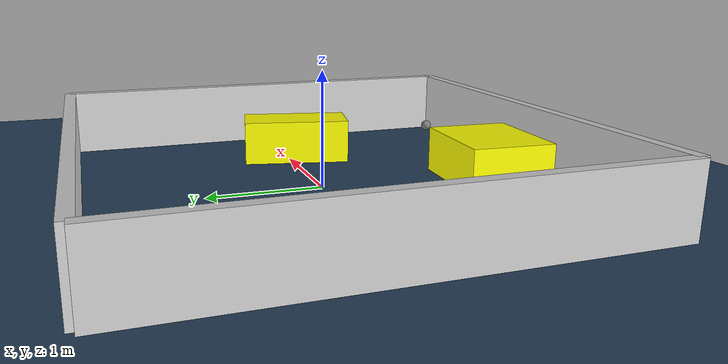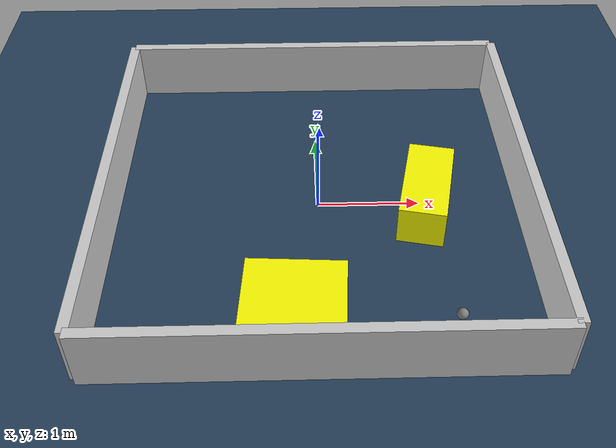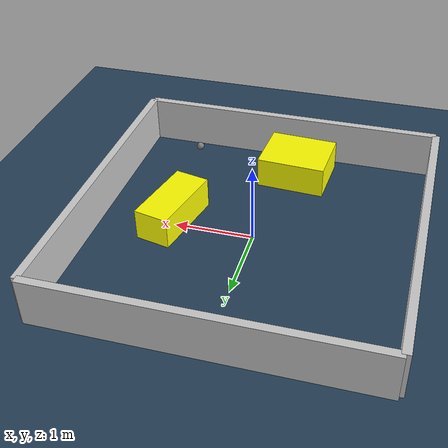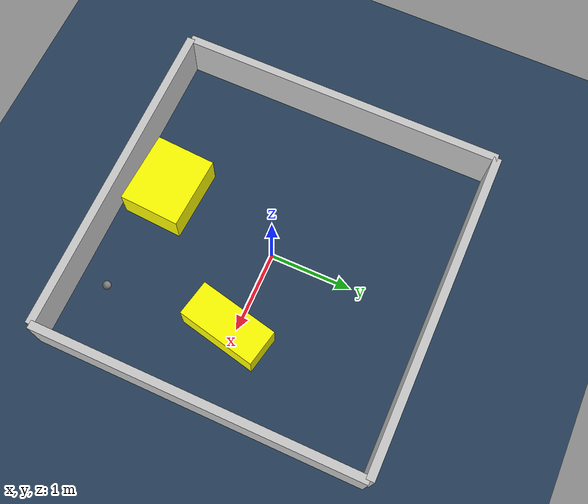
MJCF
<?xml version="1.0" ?>
<mujoco model="generated_environment">
  <option timestep="0.01" integrator="RK4" cone="elliptic"/>
  <default>
    <geom density="1"/>
  </default>
  <asset>
    <texture builtin="gradient" height="3072" rgb1="0.3 0.5 0.7" rgb2="0 0 0" type="skybox" width="512"/>
    <texture builtin="checker" height="300" mark="edge" markrgb="0.8 0.8 0.8" name="groundplane" rgb1="0.2 0.3 0.4" rgb2="0.1 0.2 0.3" type="2d" width="300"/>
    <material name="groundplane" reflectance="0.2" texrepeat="5 5" texture="groundplane" texuniform="true"/>
    <material name="robot" rgba="0.0 1.0 0.0 1"/>
  </asset>
  <worldbody>
    <light dir="0 0 -1" directional="true" pos="0 0 1.5"/>
    <geom condim="4" friction="1.0 0.005 0.001" material="groundplane" name="floor" size="0 0 0.05" type="plane"/>
    <body name="walls">
      <geom name="wall_1" condim="4" pos="-2.0 0.0 0.3" rgba="0.800000011920929 0.800000011920929 0.800000011920929 1.0" size="0.05 2.0 0.3" type="box"/>
      <geom name="wall_2" condim="4" pos="2.0 0.0 0.3" rgba="0.800000011920929 0.800000011920929 0.800000011920929 1.0" size="0.05 2.0 0.3" type="box"/>
      <geom name="wall_3" condim="4" pos="0.0 -2.0 0.3" rgba="0.800000011920929 0.800000011920929 0.800000011920929 1.0" size="2.0 0.05 0.3" type="box"/>
      <geom name="wall_4" condim="4" pos="0.0 2.0 0.3" rgba="0.800000011920929 0.800000011920929 0.800000011920929 1.0" size="2.0 0.05 0.3" type="box"/>
    </body>
    <body name="robot">
      <joint name="joint_x" type="slide" pos="0 0 0" axis="1 0 0"/>
      <joint name="joint_y" type="slide" pos="0 0 0" axis="0 1 0"/>
      <geom name="robot" type="sphere" pos="1.1781865930853037 -1.5637958815819495 0.2" size="0.05" mass="5." friction="1.0 0.005 0.0001" condim="4"/>
      <site name="sensor_ball"/>
    </body>
    <body name="obstacle_1_movable">
      <geom name="obstacle_1_movable" condim="4" pos="-0.2337884920208566 -1.4684062403460454 0.2" euler="0 0 176.70653986506764" friction="1.0 0.005 0.001" rgba="1 1 0 1" size="0.4450045139903558 0.372252247335615 0.2" type="box" mass="0.1"/>
      <joint type="free"/>
    </body>
    <body name="obstacle_2_movable">
      <geom name="obstacle_2_movable" condim="4" pos="1.0509608994693316 -0.07386355742028217 0.2" euler="0 0 347.84399781329626" friction="1.0 0.005 0.001" rgba="1 1 0 1" size="0.22394719326664192 0.49159578772663076 0.2" type="box" mass="0.1"/>
      <joint type="free"/>
    </body>
  </worldbody>
  <actuator>
    <motor name="actuator_x" joint="joint_x" gear="1" ctrlrange="-1 1"/>
    <motor name="actuator_y" joint="joint_y" gear="1" ctrlrange="-1 1"/>
  </actuator>
</mujoco>
